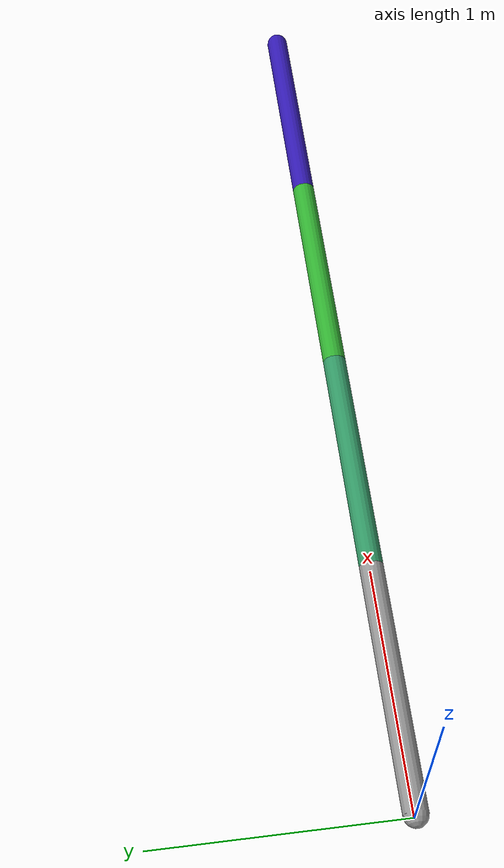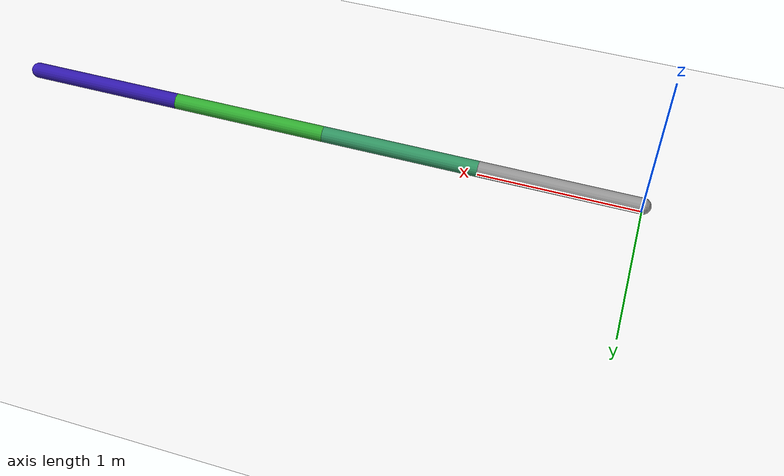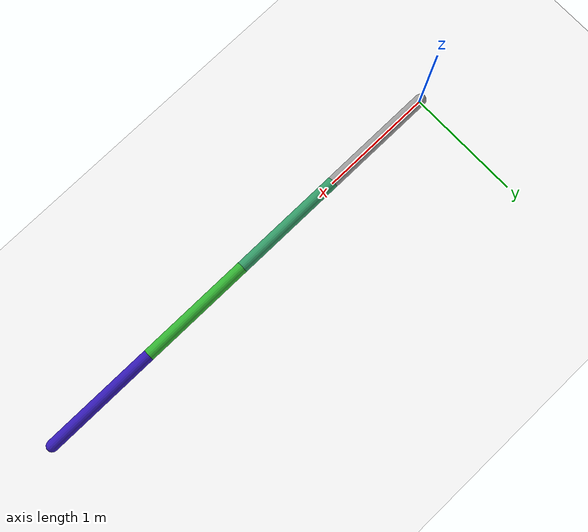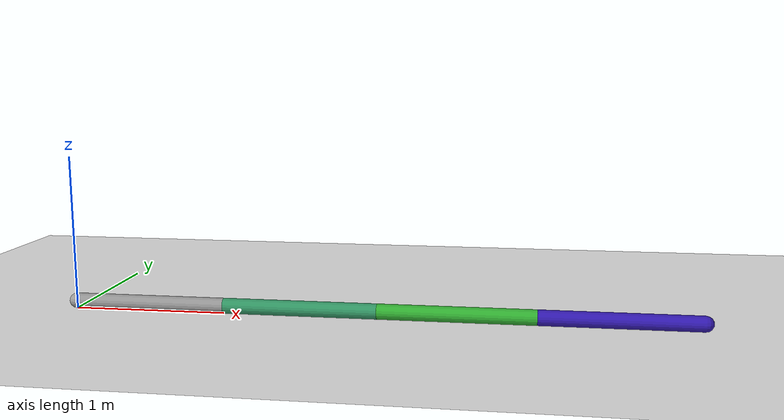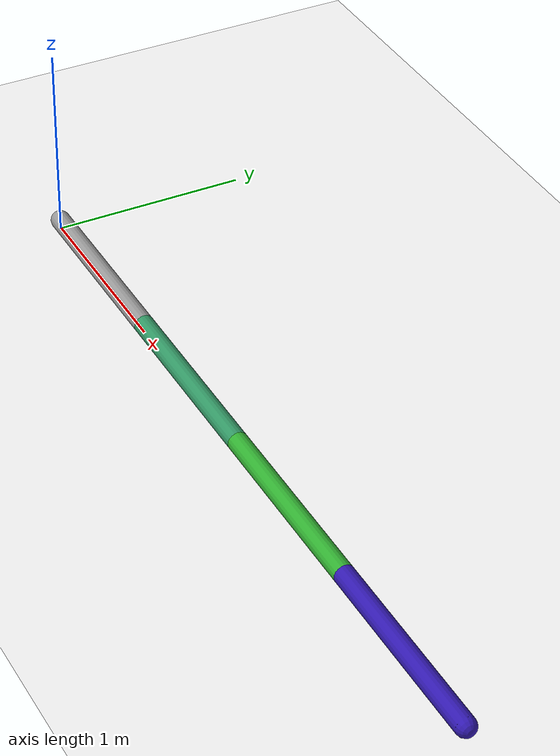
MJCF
<mujoco model="morphology">
  <default>
    <default class="/"/>
  </default>
  <custom>
    <!-- brax custom params -->
    <numeric data="10000" name="constraint_limit_stiffness"/>
    <numeric data="10000" name="constraint_stiffness"/>
    <numeric data="20" name="constraint_ang_damping"/>
    <numeric data="20" name="constraint_vel_damping"/>
    <numeric data="1" name="vel_damping"/>
    <numeric data="-0.05" name="ang_damping"/>
    <numeric data="1" name="spring_mass_scale"/>
    <numeric data="1" name="spring_inertia_scale"/>
    <numeric data="15" name="solver_maxls"/>
  </custom>
  <asset>
    <texture name="texplane" type="2d" builtin="checker" rgb1="0.1 0.2 0.3" rgb2="0.2 0.3 0.4" width="300" height="300"/>
    <material name="MatPlane" class="/" texture="texplane" texrepeat="20 20"/>
  </asset>
  <worldbody>
    <light name="//unnamed_light_0" class="/" directional="true" pos="0 0 1.5" dir="0 0 -1.3" cutoff="1e+02" exponent="1" diffuse="1 1 1" specular="0.1 0.1 0.1"/>
    <geom name="ground" class="/" type="plane" size="15 15 0.5" material="MatPlane" rgba="1 1 1 1"/>
    <body name="root" pos="0 0 0.05">
      <geom name="//unnamed_geom_1" class="/" type="capsule" size="0.05" rgba="0.6 0.6 0.6 1" fromto="0 0 0 1 0 0"/>
      <joint name="rootx" class="/" type="slide" axis="1 0 0" limited="false" stiffness="0" armature="0.2" damping="0"/>
      <joint name="rootz" class="/" type="slide" axis="0 0 1" limited="false" stiffness="0" armature="0.2" damping="0"/>
      <joint name="rooty" class="/" type="hinge" axis="0 1 0" limited="false" stiffness="0" armature="0.2" damping="0"/>
      <body name="//unnamed_body_1" pos="1 0 0">
        <joint name="joint1" class="/" type="hinge" pos="0 0 0" axis="0 1 0" limited="true" range="-40 40" armature="0.2"/>
        <geom name="//unnamed_geom_2" class="/" type="capsule" size="0.05" rgba="0.2 0.6 0.4 1" fromto="0 0 0 1 0 0"/>
        <body name="//unnamed_body_2" pos="1 0 0">
          <joint name="joint2" class="/" type="hinge" pos="0 0 0" axis="0 1 0" limited="true" range="-40 40" armature="0.2"/>
          <geom name="//unnamed_geom_3" class="/" type="capsule" size="0.05" rgba="0.2 0.7 0.2 1" fromto="0 0 0 1 0 0"/>
          <body name="//unnamed_body_3" pos="1 0 0">
            <joint name="joint3" class="/" type="hinge" pos="0 0 0" axis="0 1 0" limited="true" range="-40 40" armature="0.2"/>
            <geom name="//unnamed_geom_4" class="/" type="capsule" size="0.05" rgba="0.2 0.1 0.7 1" fromto="0 0 0 1 0 0"/>
          </body>
        </body>
      </body>
    </body>
  </worldbody>
  <actuator>
    <motor name="//unnamed_actuator_0" class="/" ctrllimited="true" ctrlrange="-1 1" gear="2e+02" joint="joint1"/>
    <motor name="//unnamed_actuator_1" class="/" ctrllimited="true" ctrlrange="-1 1" gear="2e+02" joint="joint2"/>
    <motor name="//unnamed_actuator_2" class="/" ctrllimited="true" ctrlrange="-1 1" gear="2e+02" joint="joint3"/>
  </actuator>
</mujoco>
